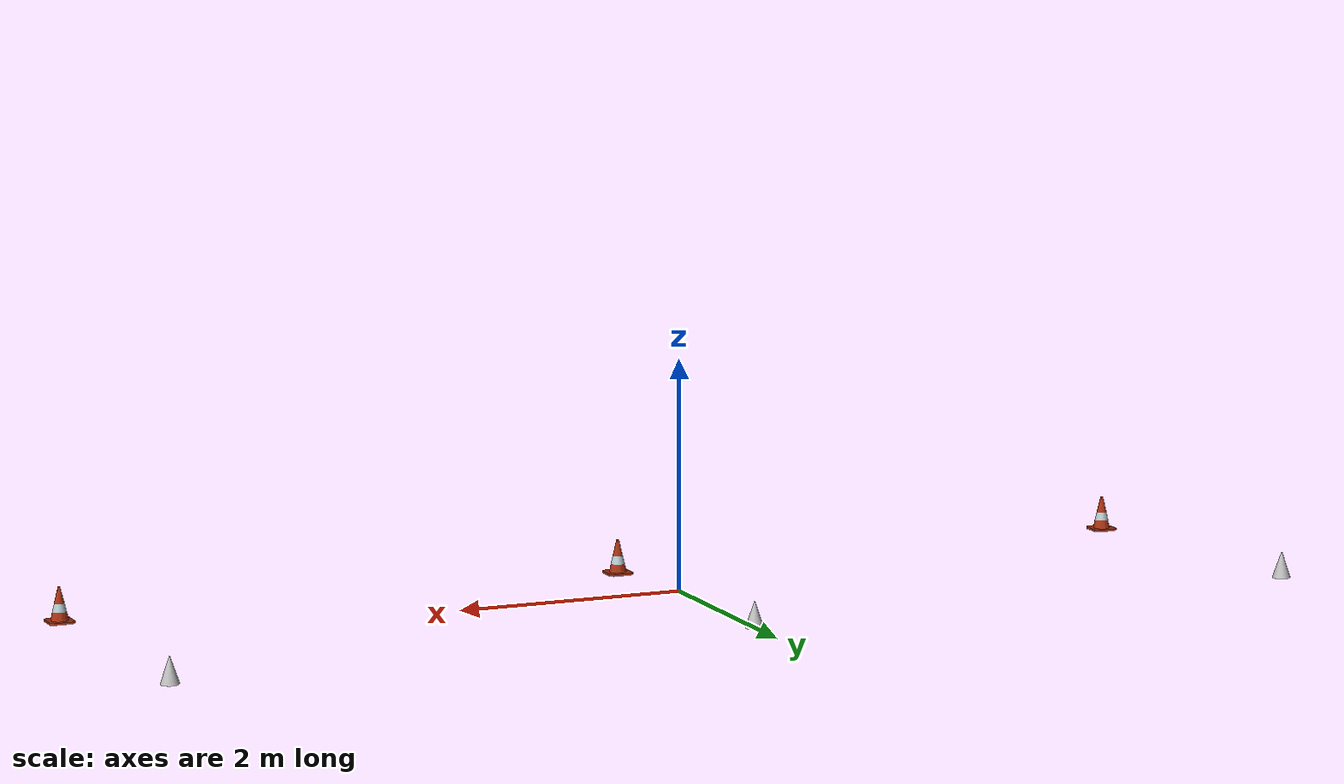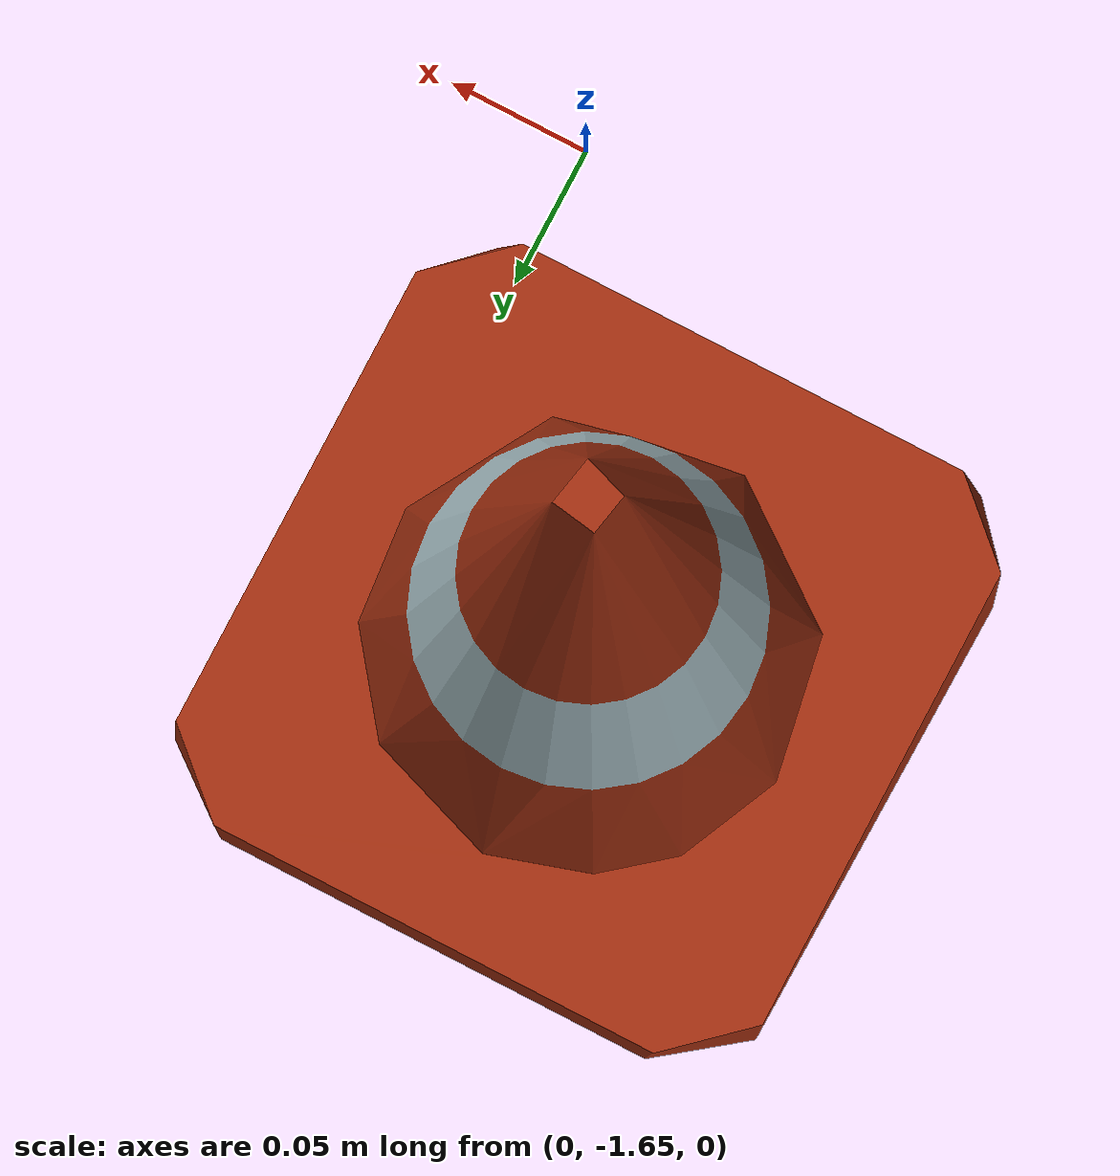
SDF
<?xml version='1.0'?>
<sdf version='1.6'>
  <model name='straight_track'>
    <model name='cone_blue'>
      <link name='link'>
        <collision name='collision'>
          <geometry>
            <mesh>
              <uri>model://cone_blue/meshes/cone_blue.dae</uri>
            </mesh>
          </geometry>
        </collision>
        <visual name='visual'>
          <geometry>
            <mesh>
              <uri>model://cone_blue/meshes/cone_blue.dae</uri>
            </mesh>
          </geometry>
        </visual>
      </link>
      <pose frame=''>5.00125 1.5533 0 0 -0 0</pose>
    </model>
    <model name='cone_blue_0'>
      <link name='link'>
        <collision name='collision'>
          <geometry>
            <mesh>
              <uri>model://cone_blue/meshes/cone_blue.dae</uri>
            </mesh>
          </geometry>
        </collision>
        <visual name='visual'>
          <geometry>
            <mesh>
              <uri>model://cone_blue/meshes/cone_blue.dae</uri>
            </mesh>
          </geometry>
        </visual>
      </link>
      <pose frame=''>0.001248 1.5533 0 0 -0 0</pose>
    </model>
    <model name='cone_blue_1'>
      <link name='link'>
        <collision name='collision'>
          <geometry>
            <mesh>
              <uri>model://cone_blue/meshes/cone_blue.dae</uri>
            </mesh>
          </geometry>
        </collision>
        <visual name='visual'>
          <geometry>
            <mesh>
              <uri>model://cone_blue/meshes/cone_blue.dae</uri>
            </mesh>
          </geometry>
        </visual>
      </link>
      <pose frame=''>-4.99875 1.5533 0 0 -0 0</pose>
    </model>
    <model name='cone_red'>
      <link name='link'>
        <collision name='collision'>
          <geometry>
            <mesh>
              <uri>model://cone_red/meshes/cone_red.dae</uri>
            </mesh>
          </geometry>
        </collision>
        <visual name='visual'>
          <geometry>
            <mesh>
              <uri>model://cone_red/meshes/cone_red.dae</uri>
            </mesh>
          </geometry>
        </visual>
      </link>
      <pose frame=''>5.00125 -1.57663 0 0 -0 0</pose>
    </model>
    <model name='cone_red_0'>
      <link name='link'>
        <collision name='collision'>
          <geometry>
            <mesh>
              <uri>model://cone_red/meshes/cone_red.dae</uri>
            </mesh>
          </geometry>
        </collision>
        <visual name='visual'>
          <geometry>
            <mesh>
              <uri>model://cone_red/meshes/cone_red.dae</uri>
            </mesh>
          </geometry>
        </visual>
      </link>
      <pose frame=''>-0.067192 -1.52376 0 0 -0 0</pose>
    </model>
    <model name='cone_red_1'>
      <link name='link'>
        <collision name='collision'>
          <geometry>
            <mesh>
              <uri>model://cone_red/meshes/cone_red.dae</uri>
            </mesh>
          </geometry>
        </collision>
        <visual name='visual'>
          <geometry>
            <mesh>
              <uri>model://cone_red/meshes/cone_red.dae</uri>
            </mesh>
          </geometry>
        </visual>
      </link>
      <pose frame=''>-4.9378 -1.55952 0 0 -0 0</pose>
    </model>
    <static>0</static>
    <allow_auto_disable>1</allow_auto_disable>
  </model>
</sdf>
